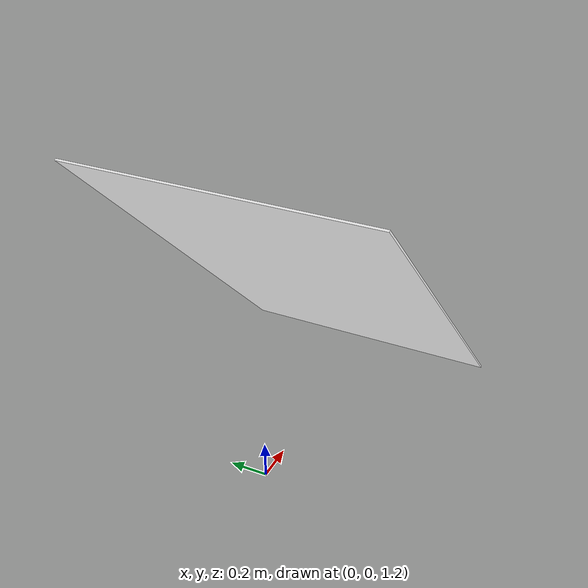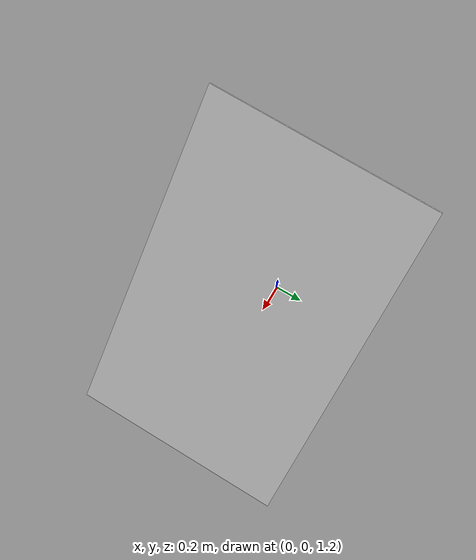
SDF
<?xml version='1.0'?>
<sdf version='1.7'>
  <model name='Plane_45_deg'>
    <link name='ceiling'>
      <pose>0 0 2.1 0 -0 0</pose>
      <inertial>
        <inertia>
          <ixx>506.983</ixx>
          <ixy>0</ixy>
          <ixz>0</ixz>
          <iyy>506.983</iyy>
          <iyz>0</iyz>
          <izz>1013.33</izz>
        </inertia>
        <mass>1520</mass>
        <pose>0 0 0 0 -0 0</pose>
      </inertial>
      <self_collide>0</self_collide>
      <enable_wind>0</enable_wind>
      <kinematic>0</kinematic>
      <gravity>1</gravity>
      <sensor name='ceiling_contact_sensor' type='contact'>
        <always_on>1</always_on>
        <visualize>1</visualize>
        <contact>
          <collision>ceiling_collision</collision>
          <topic>__default_topic__</topic>
        </contact>
        <plugin name='contact_plugin' filename='libgazebo_ros_bumper.so'>
          <bumperTopicName>ceiling_contact</bumperTopicName>
          <frameName>ceiling</frameName>
          <alwaysOn>1</alwaysOn>
          <updateRate>1000</updateRate>
        </plugin>
        <pose>0 0 0 0 -0 0</pose>
      </sensor>
      <visual name='ceiling_visual'>
        <cast_shadows>0</cast_shadows>
        <geometry>
          <box>
            <size>2.5 1.5 0.01</size>
          </box>
        </geometry>
        <material>
          <script>
            <uri>model://FlightCage/materials/scripts</uri>
            <uri>model://FlightCage/materials/textures</uri>
            <name>ceilingMat/Checkerboard</name>
          </script>
          <shader type='pixel'>
            <normal_map>__default__</normal_map>
          </shader>
          <ambient>1 1 1 1</ambient>
          <diffuse>1 1 1 1</diffuse>
          <specular>0 0 0 1</specular>
          <emissive>0 0 0 1</emissive>
        </material>
        <pose>0.5 0 0 0 0.786 0</pose>
        <transparency>0</transparency>
      </visual>
      <collision name='ceiling_collision'>
        <laser_retro>0</laser_retro>
        <max_contacts>10</max_contacts>
        <pose>0.5 0 0 0 0.786 0</pose>
        <geometry>
          <box>
            <size>2.5 1.5 0.01</size>
          </box>
        </geometry>
        <surface>
          <friction>
            <ode>
              <mu>100000</mu>
              <mu2>100000</mu2>
              <fdir1>0 0 0</fdir1>
              <slip1>0</slip1>
              <slip2>0</slip2>
            </ode>
            <torsional>
              <coefficient>1</coefficient>
              <patch_radius>0</patch_radius>
              <surface_radius>0</surface_radius>
              <use_patch_radius>1</use_patch_radius>
              <ode>
                <slip>0</slip>
              </ode>
            </torsional>
          </friction>
          <bounce>
            <restitution_coefficient>0</restitution_coefficient>
            <threshold>1e+06</threshold>
          </bounce>
          <contact>
            <collide_without_contact>0</collide_without_contact>
            <collide_without_contact_bitmask>1</collide_without_contact_bitmask>
            <collide_bitmask>65535</collide_bitmask>
            <ode>
              <soft_cfm>0</soft_cfm>
              <soft_erp>0.2</soft_erp>
              <kp>1e+13</kp>
              <kd>1</kd>
              <max_vel>0.01</max_vel>
              <min_depth>0</min_depth>
            </ode>
            <bullet>
              <split_impulse>1</split_impulse>
              <split_impulse_penetration_threshold>-0.01</split_impulse_penetration_threshold>
              <soft_cfm>0</soft_cfm>
              <soft_erp>0.2</soft_erp>
              <kp>1e+13</kp>
              <kd>1</kd>
            </bullet>
          </contact>
        </surface>
      </collision>
    </link>
    <joint name="ceiling_joint" type="fixed">
      <parent>world</parent>
      <child>ceiling</child>
      <pose>0 0 0 0 0 0</pose>
      <physics>
        <ode>
        </ode>
      </physics>
      <sensor name="force_torque" type="force_torque">
        <always_on>true</always_on>
        <update_rate>1000</update_rate>
      </sensor>
    </joint>
    <static>0</static>
    <allow_auto_disable>1</allow_auto_disable>
  </model>
</sdf>
